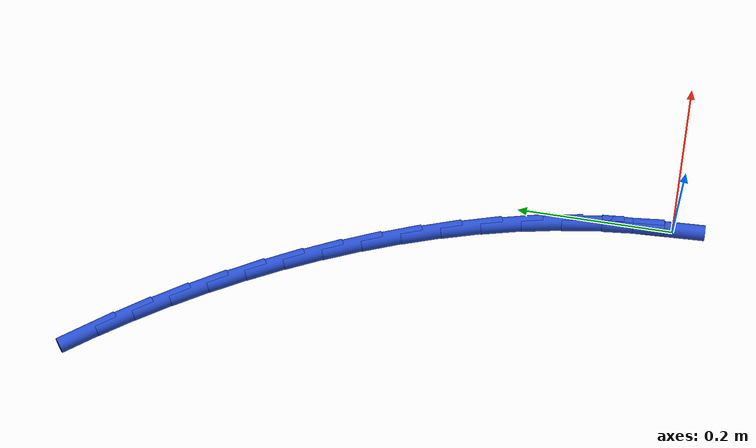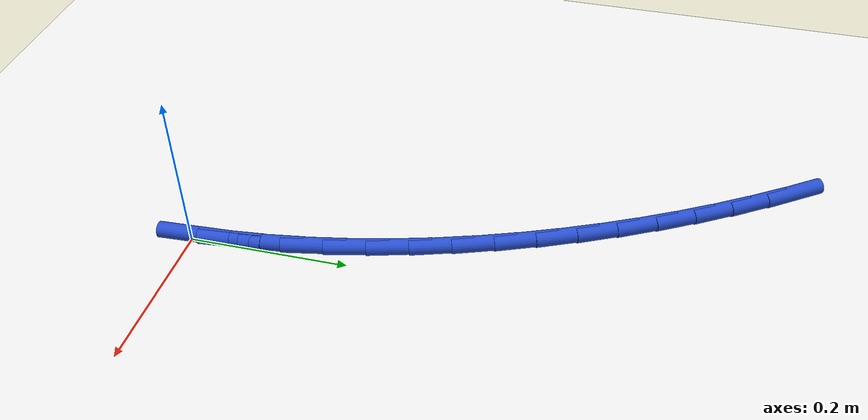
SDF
<sdf version="1.6">
 <world name="default">
  <model name="ground_plane">
   <static>1</static>
   <link name="link">
    <collision name="collision">
     <geometry><plane><normal>0 0 1</normal><size>100 100</size></plane></geometry>
     <surface><friction><ode><mu>100</mu><mu2>50</mu2></ode></friction></surface>
    </collision>
    <visual name="visual">
     <cast_shadows>0</cast_shadows>
     <geometry><plane><normal>0 0 1</normal><size>100 100</size></plane></geometry>
     <material>
      <script><uri>file://media/materials/scripts/gazebo.material</uri><name>Gazebo/WhiteGlow</name></script>
     </material>
    </visual>
   </link>
  </model>
  <model name="line">
   <link name="link_1">
    <pose>-0.002325660294244466 0.05163127850698241 0.01 0 1.57 -1.4733099521417214</pose>
    <collision name="collision">
     <geometry><cylinder><radius>0.01</radius><length>0.08</length></cylinder></geometry>
    </collision>
    <visual name="visual">
     <material>
      <script><name>Gazebo/Blue</name><uri>file://media/materials/scripts/gazebo.material</uri></script>
     </material>
     <geometry><cylinder><radius>0.01</radius><length>0.08</length></cylinder></geometry>
    </visual>
   </link>
   <link name="link_2">
    <pose>-0.007352197802913856 0.1030292717078458 0.01 0 1.57 -1.4235905987286477</pose>
    <collision name="collision">
     <geometry><cylinder><radius>0.01</radius><length>0.08</length></cylinder></geometry>
    </collision>
    <visual name="visual">
     <material>
      <script><name>Gazebo/Blue</name><uri>file://media/materials/scripts/gazebo.material</uri></script>
     </material>
     <geometry><cylinder><radius>0.01</radius><length>0.08</length></cylinder></geometry>
    </visual>
   </link>
   <link name="link_3">
    <pose>-0.014924133082717044 0.15409496586268012 0.01 0 1.57 -1.376536474901656</pose>
    <collision name="collision">
     <geometry><cylinder><radius>0.01</radius><length>0.08</length></cylinder></geometry>
    </collision>
    <visual name="visual">
     <material>
      <script><name>Gazebo/Blue</name><uri>file://media/materials/scripts/gazebo.material</uri></script>
     </material>
     <geometry><cylinder><radius>0.01</radius><length>0.08</length></cylinder></geometry>
    </visual>
   </link>
   <link name="link_4">
    <pose>-0.024885986690362828 0.20472934723157535 0.01 0 1.57 -1.3320208167475212</pose>
    <collision name="collision">
     <geometry><cylinder><radius>0.01</radius><length>0.08</length></cylinder></geometry>
    </collision>
    <visual name="visual">
     <material>
      <script><name>Gazebo/Blue</name><uri>file://media/materials/scripts/gazebo.material</uri></script>
     </material>
     <geometry><cylinder><radius>0.01</radius><length>0.08</length></cylinder></geometry>
    </visual>
   </link>
   <link name="link_5">
    <pose>-0.03708227918256005 0.2548334020746216 0.01 0 1.57 -1.2898895692620886</pose>
    <collision name="collision">
     <geometry><cylinder><radius>0.01</radius><length>0.08</length></cylinder></geometry>
    </collision>
    <visual name="visual">
     <material>
      <script><name>Gazebo/Blue</name><uri>file://media/materials/scripts/gazebo.material</uri></script>
     </material>
     <geometry><cylinder><radius>0.01</radius><length>0.08</length></cylinder></geometry>
    </visual>
   </link>
   <link name="link_6">
    <pose>-0.05135753111601754 0.3043081166519089 0.01 0 1.57 -1.249970216843738</pose>
    <collision name="collision">
     <geometry><cylinder><radius>0.01</radius><length>0.08</length></cylinder></geometry>
    </collision>
    <visual name="visual">
     <material>
      <script><name>Gazebo/Blue</name><uri>file://media/materials/scripts/gazebo.material</uri></script>
     </material>
     <geometry><cylinder><radius>0.01</radius><length>0.08</length></cylinder></geometry>
    </visual>
   </link>
   <link name="link_7">
    <pose>-0.06755626304744408 0.3530544772235271 0.01 0 1.57 -1.2120785289682583</pose>
    <collision name="collision">
     <geometry><cylinder><radius>0.01</radius><length>0.08</length></cylinder></geometry>
    </collision>
    <visual name="visual">
     <material>
      <script><name>Gazebo/Blue</name><uri>file://media/materials/scripts/gazebo.material</uri></script>
     </material>
     <geometry><cylinder><radius>0.01</radius><length>0.08</length></cylinder></geometry>
    </visual>
   </link>
   <link name="link_8">
    <pose>-0.0855229955335485 0.4009734700495663 0.01 0 1.57 -1.1760175319198385</pose>
    <collision name="collision">
     <geometry><cylinder><radius>0.01</radius><length>0.08</length></cylinder></geometry>
    </collision>
    <visual name="visual">
     <material>
      <script><name>Gazebo/Blue</name><uri>file://media/materials/scripts/gazebo.material</uri></script>
     </material>
     <geometry><cylinder><radius>0.01</radius><length>0.08</length></cylinder></geometry>
    </visual>
   </link>
   <link name="link_9">
    <pose>-0.1051028480615559 0.4479667474764099 0.01 0 1.57 -1.141191236776524</pose>
    <collision name="collision">
     <geometry><cylinder><radius>0.01</radius><length>0.08</length></cylinder></geometry>
    </collision>
    <visual name="visual">
     <material>
      <script><name>Gazebo/Blue</name><uri>file://media/materials/scripts/gazebo.material</uri></script>
     </material>
     <geometry><cylinder><radius>0.01</radius><length>0.08</length></cylinder></geometry>
    </visual>
   </link>
   <link name="link_10">
    <pose>-0.1261865846218613 0.49398672429633006 0.01 0 1.57 -1.1069178271526963</pose>
    <collision name="collision">
     <geometry><cylinder><radius>0.01</radius><length>0.08</length></cylinder></geometry>
    </collision>
    <visual name="visual">
     <material>
      <script><name>Gazebo/Blue</name><uri>file://media/materials/scripts/gazebo.material</uri></script>
     </material>
     <geometry><cylinder><radius>0.01</radius><length>0.08</length></cylinder></geometry>
    </visual>
   </link>
   <link name="link_11">
    <pose>-0.14874194966209112 0.5390714272816475 0.01 0 1.57 -1.0732754120545926</pose>
    <collision name="collision">
     <geometry><cylinder><radius>0.01</radius><length>0.08</length></cylinder></geometry>
    </collision>
    <visual name="visual">
     <material>
      <script><name>Gazebo/Blue</name><uri>file://media/materials/scripts/gazebo.material</uri></script>
     </material>
     <geometry><cylinder><radius>0.01</radius><length>0.08</length></cylinder></geometry>
    </visual>
   </link>
   <link name="link_12">
    <pose>-0.17274409558982812 0.5832671217907192 0.01 0 1.57 -1.0404040914403896</pose>
    <collision name="collision">
     <geometry><cylinder><radius>0.01</radius><length>0.08</length></cylinder></geometry>
    </collision>
    <visual name="visual">
     <material>
      <script><name>Gazebo/Blue</name><uri>file://media/materials/scripts/gazebo.material</uri></script>
     </material>
     <geometry><cylinder><radius>0.01</radius><length>0.08</length></cylinder></geometry>
    </visual>
   </link>
   <link name="link_13">
    <pose>-0.19816817481265495 0.6266200731819013 0.01 0 1.57 -1.0084315196574196</pose>
    <collision name="collision">
     <geometry><cylinder><radius>0.01</radius><length>0.08</length></cylinder></geometry>
    </collision>
    <visual name="visual">
     <material>
      <script><name>Gazebo/Blue</name><uri>file://media/materials/scripts/gazebo.material</uri></script>
     </material>
     <geometry><cylinder><radius>0.01</radius><length>0.08</length></cylinder></geometry>
    </visual>
   </link>
   <link name="link_14">
    <pose>-0.22498933973815452 0.6691765468135512 0.01 0 1.57 -0.9774711283294925</pose>
    <collision name="collision">
     <geometry><cylinder><radius>0.01</radius><length>0.08</length></cylinder></geometry>
    </collision>
    <visual name="visual">
     <material>
      <script><name>Gazebo/Blue</name><uri>file://media/materials/scripts/gazebo.material</uri></script>
     </material>
     <geometry><cylinder><radius>0.01</radius><length>0.08</length></cylinder></geometry>
    </visual>
   </link>
   <link name="link_15">
    <pose>-0.2531827427739095 0.7109828080440254 0.01 0 1.57 -0.9476209765600271</pose>
    <collision name="collision">
     <geometry><cylinder><radius>0.01</radius><length>0.08</length></cylinder></geometry>
    </collision>
    <visual name="visual">
     <material>
      <script><name>Gazebo/Blue</name><uri>file://media/materials/scripts/gazebo.material</uri></script>
     </material>
     <geometry><cylinder><radius>0.01</radius><length>0.08</length></cylinder></geometry>
    </visual>
   </link>
   <link name="link_140">
    <pose>-6.071532165918825e-17 -6.938893903907228e-17 0.01 0 1.57 -1.5252396006211373</pose>
    <collision name="collision">
     <geometry><cylinder><radius>0.01</radius><length>0.08</length></cylinder></geometry>
    </collision>
    <visual name="visual">
     <material>
      <script><name>Gazebo/Blue</name><uri>file://media/materials/scripts/gazebo.material</uri></script>
     </material>
     <geometry><cylinder><radius>0.01</radius><length>0.08</length></cylinder></geometry>
    </visual>
   </link>
   <link name="link_141">
    <pose>-0.002353076860943184 0.05161584166788444 0.01 0 1.57 -1.5252396006211373</pose>
    <collision name="collision">
     <geometry><cylinder><radius>0.01</radius><length>0.08</length></cylinder></geometry>
    </collision>
    <visual name="visual">
     <material>
      <script><name>Gazebo/Blue</name><uri>file://media/materials/scripts/gazebo.material</uri></script>
     </material>
     <geometry><cylinder><radius>0.01</radius><length>0.08</length></cylinder></geometry>
    </visual>
   </link>
  </model>
 </world>
</sdf>
